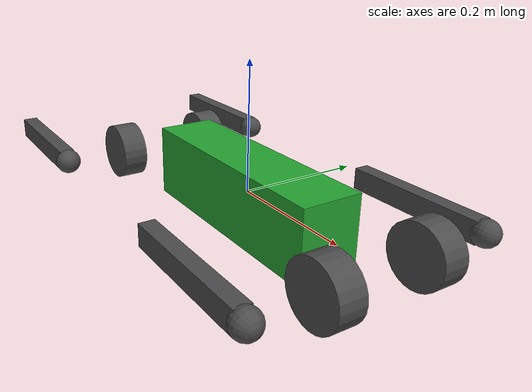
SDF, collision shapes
<sdf version='1.6'>
  <model name='jamal_description'>
    <link name='body'>
      <pose frame=''>0 0 0 0 -0 0</pose>
      <inertial>
        <pose>0 0 0 0 -0 0</pose>
        <mass>12.8195</mass>
        <inertia>
          <ixx>0.0566668</ixx>
          <ixy>-8.54732e-06</ixy>
          <ixz>3.4116e-05</ixz>
          <iyy>0.0365645</iyy>
          <iyz>-4.86965e-06</iyz>
          <izz>0.0738589</izz>
        </inertia>
      </inertial>
      <collision name='body_collision_collision'>
        <pose>0 0 0 0 -0 0</pose>
        <geometry>
          <box>
            <size>0.3762 0.0935 0.114</size>
          </box>
        </geometry>
        <surface>
          <contact>
            <ode/>
          </contact>
          <friction>
            <ode/>
          </friction>
        </surface>
      </collision>
      <collision name='body_fixed_joint_lump__imu_link_collision_1'>
        <pose frame=''>0 0 0 0 -0 0</pose>
        <geometry>
          <box>
            <size>0.001 0.001 0.001</size>
          </box>
        </geometry>
        <surface>
          <contact>
            <ode/>
          </contact>
          <friction>
            <ode>
              <mu>0.5</mu>
              <mu2>0.5</mu2>
            </ode>
          </friction>
        </surface>
      </collision>
      <visual name='body_visual'>
        <pose frame=''>0 0 0 0 -0 0</pose>
        <geometry>
          <box>
            <size>0.001 0.001 0.001</size>
          </box>
        </geometry>
        <material>
          <script>
            <name>Gazebo/Green</name>
            <uri>file://media/materials/scripts/gazebo.material</uri>
          </script>
        </material>
      </visual>
      <visual name='body_visual_visual_1'>
        <pose frame=''>0 0 0 0 -0 0</pose>
        <geometry>
          <mesh>
            <scale>1 1 1</scale>
            <uri>model:///meshes/trunk.dae</uri>
          </mesh>
        </geometry>
        <material>
          <script>
            <name>Gazebo/Green</name>
            <uri>file://media/materials/scripts/gazebo.material</uri>
          </script>
        </material>
      </visual>
      <visual name='body_fixed_joint_lump__imu_link_visual_2'>
        <pose>0 0 0 0 -0 0</pose>
        <geometry>
          <box>
            <size>0.001 0.001 0.001</size>
          </box>
        </geometry>
        <material>
          <script>
            <name>Gazebo/Red</name>
            <uri>file://media/materials/scripts/gazebo.material</uri>
          </script>
        </material>
      </visual>
      <velocity_decay/>
      <velocity_decay/>
      <velocity_decay/>
      <gravity>1</gravity>
      <sensor name='imu_sensor' type='imu'>
        <always_on>1</always_on>
        <update_rate>1000</update_rate>
        <visualize>1</visualize>
        <topic>__default_topic__</topic>
        <plugin name='imu_plugin' filename='libgazebo_ros_imu_sensor.so'>
          <topicName>trunk_imu</topicName>
          <bodyName>imu_link</bodyName>
          <updateRateHZ>1000.0</updateRateHZ>
          <gaussianNoise>0.0</gaussianNoise>
          <xyzOffset>0 0 0</xyzOffset>
          <rpyOffset>0 0 0</rpyOffset>
          <frameName>imu_link</frameName>
        </plugin>
        <pose>0 0 0 0 -0 0</pose>
      </sensor>
      <gravity>1</gravity>
    </link>
    <link name='hip2'>
      <pose relative_to='10'>0 0 0 0 -0 0</pose>
      <inertial>
        <pose>0 0 0 0 -0 0</pose>
        <mass>0.933763</mass>
        <inertia>
          <ixx>0.000832274</ixx>
          <ixy>-2.01743e-06</ixy>
          <ixz>-9.96248e-07</ixz>
          <iyy>0.00106512</iyy>
          <iyz>3.2766e-06</iyz>
          <izz>0.00080368</izz>
        </inertia>
      </inertial>
      <collision name='hip2_collision_collision'>
        <pose>0 0 0 1.5708 -0 0</pose>
        <geometry>
          <cylinder>
            <length>0.04</length>
            <radius>0.046</radius>
          </cylinder>
        </geometry>
        <surface>
          <contact>
            <ode/>
          </contact>
          <friction>
            <ode>
              <mu>0.2</mu>
              <mu2>0.2</mu2>
            </ode>
          </friction>
        </surface>
      </collision>
      <visual name='hip2_visual_visual'>
        <pose>0 0 0 3.14159 -0 0</pose>
        <geometry>
          <mesh>
            <scale>1 1 1</scale>
            <uri>model:///meshes/hip.dae</uri>
          </mesh>
        </geometry>
        <material>
          <script>
            <name>Gazebo/DarkGrey</name>
            <uri>file://media/materials/scripts/gazebo.material</uri>
          </script>
        </material>
      </visual>
      <gravity>1</gravity>
    </link>
    <joint name='10' type='revolute'>
      <pose relative_to='body'>0.2699 -0.08028 0 0 -0 0</pose>
      <parent>body</parent>
      <child>hip2</child>
      <physics>
        <provide_feedback>true</provide_feedback>
      </physics>
      <axis>
        <xyz>1 0 0</xyz>
        <limit>
          <lower>-0.436332</lower>
          <upper>0.436332</upper>
          <effort>48</effort>
          <velocity>8</velocity>
        </limit>
        <dynamics>
          <damping>0.01</damping>
          <friction>0.2</friction>
          <spring_reference>0</spring_reference>
          <spring_stiffness>0</spring_stiffness>
        </dynamics>
      </axis>
    </joint>

    <link name='upper2'>
      <pose relative_to='4'>0 0 0 0 -0 0</pose>
      <inertial>
        <pose>0 0 0 0 -0 0</pose>
        <mass>1.32134</mass>
        <inertia>
          <ixx>0.00262881</ixx>
          <ixy>-3.0753e-07</ixy>
          <ixz>-6.61219e-05</ixz>
          <iyy>0.00316092</iyy>
          <iyz>-4.01609e-05</iyz>
          <izz>0.00121962</izz>
        </inertia>
      </inertial>
      <collision name='upper2_collision_collision'>
        <pose>0 0 -0.1125 0 1.5708 0</pose>
        <geometry>
          <box>
            <size>0.225 0.0245 0.034</size>
          </box>
        </geometry>
        <surface>
          <contact>
            <ode>
              <kp>1e+06</kp>
              <kd>1</kd>
            </ode>
          </contact>
          <friction>
            <ode>
              <mu>0.2</mu>
              <mu2>0.2</mu2>
            </ode>
          </friction>
        </surface>
      </collision>
      <visual name='upper2_visual_visual'>
        <pose>0 0 0 0 -0 0</pose>
        <geometry>
          <mesh>
            <scale>1 1 1</scale>
            <uri>model:///meshes/thigh_mirror.dae</uri>
          </mesh>
        </geometry>
        <material>
          <script>
            <name>Gazebo/DarkGrey</name>
            <uri>file://media/materials/scripts/gazebo.material</uri>
          </script>
        </material>
      </visual>
      <gravity>1</gravity>
    </link>
    <joint name='4' type='revolute'>
      <pose relative_to='hip2'>0 -0.10755 0 0 1.5708 0</pose>
      <parent>hip2</parent>
      <child>upper2</child>
      <physics>
        <provide_feedback>true</provide_feedback>
      </physics>
      <axis>
        <xyz>0 -1 0</xyz>
        <limit>
          <lower>-1.5708</lower>
          <upper>1.5708</upper>
          <effort>48</effort>
          <velocity>8</velocity>
        </limit>
        <dynamics>
          <damping>0.01</damping>
          <friction>0.2</friction>
          <spring_reference>0</spring_reference>
          <spring_stiffness>0</spring_stiffness>
        </dynamics>
      </axis>
    </joint>

    <link name='lower2'>
      <pose relative_to='5'>0 0 0 0 -0 0</pose>
      <inertial>
        <pose>0 0 -0.079452 0 -0 0</pose>
        <mass>0.188793</mass>
        <inertia>
          <ixx>0.00301049</ixx>
          <ixy>-7.71824e-09</ixy>
          <ixz>7.55837e-05</ixz>
          <iyy>0.00303084</iyy>
          <iyz>4.84096e-09</iyz>
          <izz>3.03639e-05</izz>
        </inertia>
      </inertial>
      <collision name='lower2_collision_collision'>
        <pose>0 0 -0.115 0 1.5708 0</pose>
        <geometry>
          <box>
            <size>0.23 0.016 0.016</size>
          </box>
        </geometry>
        <surface>
          <contact>
            <ode/>
          </contact>
          <friction>
            <ode>
              <mu>0.2</mu>
              <mu2>0.2</mu2>
            </ode>
          </friction>
        </surface>
      </collision>
      <visual name='lower2_visual_visual'>
        <pose frame=''>0 0 0 0 -0 0</pose>
        <geometry>
          <mesh>
            <scale>1 1 1</scale>
            <uri>model:///meshes/calf.dae</uri>
          </mesh>
        </geometry>
        <material>
          <script>
            <uri>__default__</uri>
            <name>__default__</name>
          </script>
        </material>
      </visual>
      <gravity>1</gravity>
      <velocity_decay/>
      <self_collide>0</self_collide>
    </link>

    <joint name='5' type='revolute'>
      <pose relative_to='upper2'>0 0 -0.225 3.14159 -0 3.14159</pose>
      <parent>upper2</parent>
      <child>lower2</child>
      <physics>
        <provide_feedback>true</provide_feedback>
      </physics>
      <axis>
        <xyz>0 1 0</xyz>
        <limit>
          <lower>-2.67035</lower>
          <upper>2.67035</upper>
          <effort>48</effort>
          <velocity>8</velocity>
        </limit>
        <dynamics>
          <damping>0.01</damping>
          <friction>0.2</friction>
          <spring_reference>0</spring_reference>
          <spring_stiffness>0</spring_stiffness>
        </dynamics>
      </axis>
    </joint>
    <link name='toe2'>
      <pose relative_to='lower2'>0 0 -0.23 0 -0 0</pose>
      <inertial>
        <pose frame=''>0 0 0 0 -0 0</pose>
        <mass>0.06</mass>
        <inertia>
          <ixx>9.6e-06</ixx>
          <ixy>0</ixy>
          <ixz>0</ixz>
          <iyy>9.6e-06</iyy>
          <iyz>0</iyz>
          <izz>9.6e-06</izz>
        </inertia>
      </inertial>
      <collision name='toe2_collision_collision'>
        <pose frame=''>0 0 0 0 -0 0</pose>
        <geometry>
          <sphere>
            <radius>0.02</radius>
          </sphere>
        </geometry>
        <surface>
          <contact>
            <ode>
              <kp>1e+06</kp>
              <kd>1</kd>
            </ode>
          </contact>
          <friction>
            <ode>
              <mu>0.6</mu>
              <mu2>0.6</mu2>
            </ode>
          </friction>
        </surface>
      </collision>
      <visual name='toe2_visual_visual'>
        <pose frame=''>0 0 0 0 -0 0</pose>
        <geometry>
          <sphere>
            <radius>0.01</radius>
          </sphere>
        </geometry>
        <material>
          <script>
            <name>Gazebo/DarkGrey</name>
            <uri>file://media/materials/scripts/gazebo.material</uri>
          </script>
        </material>
      </visual>
      <velocity_decay/>
      <sensor name='toe2_contact' type='contact'>
        <plugin name='toe2_plugin' filename='libgazebo_ros_bumper.so'>
          <alwaysOn>1</alwaysOn>
          <updateRate>500</updateRate>
          <bumperTopicName>gazebo/toe2_contact_state</bumperTopicName>
          <frameName>world</frameName>
        </plugin>
        <contact>
          <collision>toe2_collision</collision>
          <topic>__default_topic__</topic>
        </contact>
        <update_rate>500</update_rate>
      </sensor>
      <gravity>1</gravity>
      <velocity_decay/>
      <self_collide>0</self_collide>
    </link>
    <joint name='jtoe2' type='fixed'>
      <child>toe2</child>
      <parent>lower2</parent>
      <axis>
        <dynamics>
          <spring_reference>0</spring_reference>
          <spring_stiffness>0</spring_stiffness>
        </dynamics>
        <xyz>0 0 1</xyz>
        <use_parent_model_frame>0</use_parent_model_frame>
        <limit>
          <lower>-1e+16</lower>
          <upper>1e+16</upper>
        </limit>
      </axis>
      <physics>
        <ode>
          <limit>
            <cfm>0</cfm>
            <erp>0.2</erp>
          </limit>
        </ode>
      </physics>
    </joint>

    <link name='hip3'>
      <pose relative_to='11'>0 0 0 0 -0 0</pose>
      <inertial>
        <pose>0 0 0 0 -0 0</pose>
        <mass>0.933763</mass>
        <inertia>
          <ixx>0.000832274</ixx>
          <ixy>2.01743e-06</ixy>
          <ixz>9.96248e-07</ixz>
          <iyy>0.00106512</iyy>
          <iyz>3.2766e-06</iyz>
          <izz>0.00080368</izz>
        </inertia>
      </inertial>
      <collision name='hip3_collision_collision'>
        <pose>0 0 0 1.5708 -0 0</pose>
        <geometry>
          <cylinder>
            <length>0.04</length>
            <radius>0.046</radius>
          </cylinder>
        </geometry>
        <surface>
          <contact>
            <ode/>
          </contact>
          <friction>
            <ode>
              <mu>0.2</mu>
              <mu2>0.2</mu2>
            </ode>
          </friction>
        </surface>
      </collision>
      <visual name='hip3_visual_visual'>
        <pose>0 0 0 -0 0 3.14159</pose>
        <geometry>
          <mesh>
            <scale>1 1 1</scale>
            <uri>model:///meshes/hip.dae</uri>
          </mesh>
        </geometry>
        <material>
          <script>
            <name>Gazebo/DarkGrey</name>
            <uri>file://media/materials/scripts/gazebo.material</uri>
          </script>
        </material>
      </visual>
      <gravity>1</gravity>
    </link>
    <joint name='11' type='revolute'>
      <pose relative_to='body'>-0.2699 -0.08028 0 0 -0 0</pose>
      <parent>body</parent>
      <child>hip3</child>
      <physics>
        <provide_feedback>true</provide_feedback>
      </physics>
      <axis>
        <xyz>1 0 0</xyz>
        <limit>
          <lower>-0.436332</lower>
          <upper>0.436332</upper>
          <effort>48</effort>
          <velocity>8</velocity>
        </limit>
        <dynamics>
          <damping>0.01</damping>
          <friction>0.2</friction>
          <spring_reference>0</spring_reference>
          <spring_stiffness>0</spring_stiffness>
        </dynamics>
      </axis>
    </joint>

    <link name='upper3'>
      <pose relative_to='6'>0 0 0 0 -0 0</pose>
      <inertial>
        <pose>0 0 0 0 -0 0</pose>
        <mass>1.32134</mass>
        <inertia>
          <ixx>0.00262881</ixx>
          <ixy>-3.0753e-07</ixy>
          <ixz>-6.61219e-05</ixz>
          <iyy>0.00316092</iyy>
          <iyz>-4.01609e-05</iyz>
          <izz>0.00121962</izz>
        </inertia>
      </inertial>
      <collision name='upper3_collision_collision'>
        <pose>0 0 -0.1125 0 1.5708 0</pose>
        <geometry>
          <box>
            <size>0.225 0.0245 0.034</size>
          </box>
        </geometry>
        <surface>
          <contact>
            <ode>
              <kp>1e+06</kp>
              <kd>1</kd>
            </ode>
          </contact>
          <friction>
            <ode>
              <mu>0.2</mu>
              <mu2>0.2</mu2>
            </ode>
          </friction>
        </surface>
      </collision>
      <visual name='upper3_visual_visual'>
        <pose>0 0 0 0 -0 0</pose>
        <geometry>
          <mesh>
            <scale>1 1 1</scale>
            <uri>model:///meshes/thigh_mirror.dae</uri>
          </mesh>
        </geometry>
        <material>
          <script>
            <name>Gazebo/DarkGrey</name>
            <uri>file://media/materials/scripts/gazebo.material</uri>
          </script>
        </material>
      </visual>
      <gravity>1</gravity>
    </link>
    <joint name='6' type='revolute'>
      <pose relative_to='hip3'>0 -0.10755 0 0 1.5708 0</pose>
      <parent>hip3</parent>
      <child>upper3</child>
      <physics>
        <provide_feedback>true</provide_feedback>
      </physics>
      <axis>
        <xyz>0 -1 0</xyz>
        <limit>
          <lower>-1.5708</lower>
          <upper>1.5708</upper>
          <effort>48</effort>
          <velocity>8</velocity>
        </limit>
        <dynamics>
          <damping>0.01</damping>
          <friction>0.2</friction>
          <spring_reference>0</spring_reference>
          <spring_stiffness>0</spring_stiffness>
        </dynamics>
      </axis>
    </joint>

    <link name='lower3'>
      <pose relative_to='7'>0 0 0 0 -0 0</pose>
      <inertial>
        <pose>0 0 -0.079452 0 -0 0</pose>
        <mass>0.188793</mass>
        <inertia>
          <ixx>0.00301049</ixx>
          <ixy>-7.71824e-09</ixy>
          <ixz>7.55837e-05</ixz>
          <iyy>0.00303084</iyy>
          <iyz>4.84096e-09</iyz>
          <izz>3.03639e-05</izz>
        </inertia>
      </inertial>
      <collision name='lower3_collision_collision'>
        <pose>0 0 -0.115 0 1.5708 0</pose>
        <geometry>
          <box>
            <size>0.23 0.016 0.016</size>
          </box>
        </geometry>
        <surface>
          <contact>
            <ode/>
          </contact>
          <friction>
            <ode>
              <mu>0.2</mu>
              <mu2>0.2</mu2>
            </ode>
          </friction>
        </surface>
      </collision>
      <visual name='lower3_visual_visual'>
        <pose frame=''>0 0 0 0 -0 0</pose>
        <geometry>
          <mesh>
            <scale>1 1 1</scale>
            <uri>model:///meshes/calf.dae</uri>
          </mesh>
        </geometry>
        <material>
          <script>
            <uri>__default__</uri>
            <name>__default__</name>
          </script>
        </material>
      </visual>
      <gravity>1</gravity>
      <velocity_decay/>
      <self_collide>0</self_collide>
    </link>
    <joint name='7' type='revolute'>
      <pose relative_to='upper3'>0 0 -0.225 3.14159 -0 3.14159</pose>
      <parent>upper3</parent>
      <child>lower3</child>
      <physics>
        <provide_feedback>true</provide_feedback>
      </physics>
      <axis>
        <xyz>0 1 0</xyz>
        <limit>
          <lower>-2.67035</lower>
          <upper>2.67035</upper>
          <effort>48</effort>
          <velocity>8</velocity>
        </limit>
        <dynamics>
          <damping>0.01</damping>
          <friction>0.2</friction>
          <spring_reference>0</spring_reference>
          <spring_stiffness>0</spring_stiffness>
        </dynamics>
      </axis>
    </joint>

    <link name='toe3'>
      <pose relative_to='lower3'>0 0 -0.23 0 -0 0</pose>
      <inertial>
        <pose frame=''>0 0 0 0 -0 0</pose>
        <mass>0.06</mass>
        <inertia>
          <ixx>9.6e-06</ixx>
          <ixy>0</ixy>
          <ixz>0</ixz>
          <iyy>9.6e-06</iyy>
          <iyz>0</iyz>
          <izz>9.6e-06</izz>
        </inertia>
      </inertial>
      <collision name='toe3_collision_collision'>
        <pose frame=''>0 0 0 0 -0 0</pose>
        <geometry>
          <sphere>
            <radius>0.02</radius>
          </sphere>
        </geometry>
        <surface>
          <contact>
            <ode>
              <kp>1e+06</kp>
              <kd>1</kd>
            </ode>
          </contact>
          <friction>
            <ode>
              <mu>0.6</mu>
              <mu2>0.6</mu2>
            </ode>
          </friction>
        </surface>
      </collision>
      <visual name='toe3_visual_visual'>
        <pose frame=''>0 0 0 0 -0 0</pose>
        <geometry>
          <sphere>
            <radius>0.01</radius>
          </sphere>
        </geometry>
        <material>
          <script>
            <name>Gazebo/DarkGrey</name>
            <uri>file://media/materials/scripts/gazebo.material</uri>
          </script>
        </material>
      </visual>
      <velocity_decay/>
      <sensor name='toe3_contact' type='contact'>
        <plugin name='toe3_plugin' filename='libgazebo_ros_bumper.so'>
          <alwaysOn>1</alwaysOn>
          <updateRate>500</updateRate>
          <bumperTopicName>gazebo/toe3_contact_state</bumperTopicName>
          <frameName>world</frameName>
        </plugin>
        <contact>
          <collision>toe3_collision</collision>
          <topic>__default_topic__</topic>
        </contact>
        <update_rate>500</update_rate>
      </sensor>
      <gravity>1</gravity>
      <velocity_decay/>
      <self_collide>0</self_collide>
    </link>
    <joint name='jtoe3' type='fixed'>
      <child>toe3</child>
      <parent>lower3</parent>
      <axis>
        <dynamics>
          <spring_reference>0</spring_reference>
          <spring_stiffness>0</spring_stiffness>
        </dynamics>
        <xyz>0 0 1</xyz>
        <use_parent_model_frame>0</use_parent_model_frame>
        <limit>
          <lower>-1e+16</lower>
          <upper>1e+16</upper>
        </limit>
      </axis>
      <physics>
        <ode>
          <limit>
            <cfm>0</cfm>
            <erp>0.2</erp>
          </limit>
        </ode>
      </physics>
    </joint>

    <link name='hip0'>
      <pose relative_to='8'>0 0 0 0 -0 0</pose>
      <inertial>
        <pose>0 0 0 0 -0 0</pose>
        <mass>0.933763</mass>
        <inertia>
          <ixx>0.000832274</ixx>
          <ixy>2.01743e-06</ixy>
          <ixz>-9.96248e-07</ixz>
          <iyy>0.00106512</iyy>
          <iyz>-3.2766e-06</iyz>
          <izz>0.00080368</izz>
        </inertia>
      </inertial>
      <collision name='hip0_collision_collision'>
        <pose>0 0 0 1.5708 -0 0</pose>
        <geometry>
          <cylinder>
            <length>0.04</length>
            <radius>0.046</radius>
          </cylinder>
        </geometry>
        <surface>
          <contact>
            <ode/>
          </contact>
          <friction>
            <ode>
              <mu>0.2</mu>
              <mu2>0.2</mu2>
            </ode>
          </friction>
        </surface>
      </collision>
      <visual name='hip0_visual_visual'>
        <pose>0 0 0 0 -0 0</pose>
        <geometry>
          <mesh>
            <scale>1 1 1</scale>
            <uri>model:///meshes/hip.dae</uri>
          </mesh>
        </geometry>
        <material>
          <script>
            <name>Gazebo/DarkGrey</name>
            <uri>file://media/materials/scripts/gazebo.material</uri>
          </script>
        </material>
      </visual>
      <gravity>1</gravity>
    </link>
    <joint name='8' type='revolute'>
      <pose relative_to='body'>0.2699 0.08028 0 0 -0 0</pose>
      <parent>body</parent>
      <child>hip0</child>
      <physics>
        <provide_feedback>true</provide_feedback>
      </physics>
      <axis>
        <xyz>1 0 0</xyz>
        <limit>
          <lower>-0.436332</lower>
          <upper>0.436332</upper>
          <effort>48</effort>
          <velocity>8</velocity>
        </limit>
        <dynamics>
          <damping>0.01</damping>
          <friction>0.2</friction>
          <spring_reference>0</spring_reference>
          <spring_stiffness>0</spring_stiffness>
        </dynamics>
      </axis>
    </joint>

    <link name='upper0'>
      <pose relative_to='0'>0 0 0 0 -0 0</pose>
      <inertial>
        <pose>0 0 0 0 -0 0</pose>
        <mass>1.32134</mass>
        <inertia>
          <ixx>0.00262881</ixx>
          <ixy>3.0753e-07</ixy>
          <ixz>-6.61219e-05</ixz>
          <iyy>0.00316092</iyy>
          <iyz>4.01609e-05</iyz>
          <izz>0.00121962</izz>
        </inertia>
      </inertial>
      <collision name='upper0_collision_collision'>
        <pose>0 0 -0.1125 0 1.5708 0</pose>
        <geometry>
          <box>
            <size>0.225 0.0245 0.034</size>
          </box>
        </geometry>
        <surface>
          <contact>
            <ode>
              <kp>1e+06</kp>
              <kd>1</kd>
            </ode>
          </contact>
          <friction>
            <ode>
              <mu>0.2</mu>
              <mu2>0.2</mu2>
            </ode>
          </friction>
        </surface>
      </collision>
      <visual name='upper0_visual_visual'>
        <pose>0 0 0 0 -0 0</pose>
        <geometry>
          <mesh>
            <scale>1 1 1</scale>
            <uri>model:///meshes/thigh.dae</uri>
          </mesh>
        </geometry>
        <material>
          <script>
            <name>Gazebo/DarkGrey</name>
            <uri>file://media/materials/scripts/gazebo.material</uri>
          </script>
        </material>
      </visual>
      <gravity>1</gravity>

    </link>
    <joint name='0' type='revolute'>
      <pose relative_to='hip0'>0 0.10755 0 0 1.5708 0</pose>
      <parent>hip0</parent>
      <child>upper0</child>
      <physics>
        <provide_feedback>true</provide_feedback>
      </physics>
      <axis>
        <xyz>0 -1 0</xyz>
        <limit>
          <lower>-1.5708</lower>
          <upper>1.5708</upper>
          <effort>48</effort>
          <velocity>8</velocity>
        </limit>
        <dynamics>
          <damping>0.01</damping>
          <friction>0.2</friction>
          <spring_reference>0</spring_reference>
          <spring_stiffness>0</spring_stiffness>
        </dynamics>
      </axis>
    </joint>

    <link name='lower0'>
      <pose relative_to='1'>0 0 0 0 -0 0</pose>
      <inertial>
        <pose>0 0 -0.079452 0 -0 0</pose>
        <mass>0.188793</mass>
        <inertia>
          <ixx>0.00301049</ixx>
          <ixy>-7.71824e-09</ixy>
          <ixz>7.55837e-05</ixz>
          <iyy>0.00303084</iyy>
          <iyz>4.84096e-09</iyz>
          <izz>3.03639e-05</izz>
        </inertia>
      </inertial>
      <collision name='lower0_collision_collision'>
        <pose>0 0 -0.115 0 1.5708 0</pose>
        <geometry>
          <box>
            <size>0.23 0.016 0.016</size>
          </box>
        </geometry>
        <surface>
          <contact>
            <ode/>
          </contact>
          <friction>
            <ode>
              <mu>0.2</mu>
              <mu2>0.2</mu2>
            </ode>
          </friction>
        </surface>
      </collision>
      <visual name='lower0_visual_visual'>
        <pose frame=''>0 0 0 0 -0 0</pose>
        <geometry>
          <mesh>
            <scale>1 1 1</scale>
            <uri>model:///meshes/calf.dae</uri>
          </mesh>
        </geometry>
        <material>
          <script>
            <uri>__default__</uri>
            <name>__default__</name>
          </script>
        </material>
      </visual>
      <gravity>1</gravity>
      <velocity_decay/>
      <self_collide>0</self_collide>
    </link>
    <joint name='1' type='revolute'>
      <pose relative_to='upper0'>0 0 -0.225 3.14159 -0 3.14159</pose>
      <parent>upper0</parent>
      <child>lower0</child>
      <physics>
        <provide_feedback>true</provide_feedback>
      </physics>
      <axis>
        <xyz>0 1 0</xyz>
        <limit>
          <lower>-2.67035</lower>
          <upper>2.67035</upper>
          <effort>48</effort>
          <velocity>8</velocity>
        </limit>
        <dynamics>
          <damping>0.01</damping>
          <friction>0.2</friction>
          <spring_reference>0</spring_reference>
          <spring_stiffness>0</spring_stiffness>
        </dynamics>
      </axis>
    </joint>

    <link name='toe0'>
      <pose relative_to='lower0'>0 0 -0.23 0 -0 0</pose>
      <inertial>
        <pose frame=''>0 0 0 0 -0 0</pose>
        <mass>0.06</mass>
        <inertia>
          <ixx>9.6e-06</ixx>
          <ixy>0</ixy>
          <ixz>0</ixz>
          <iyy>9.6e-06</iyy>
          <iyz>0</iyz>
          <izz>9.6e-06</izz>
        </inertia>
      </inertial>
      <collision name='toe0_collision_collision'>
        <pose frame=''>0 0 0 0 -0 0</pose>
        <geometry>
          <sphere>
            <radius>0.02</radius>
          </sphere>
        </geometry>
        <surface>
          <contact>
            <ode>
              <kp>1e+06</kp>
              <kd>1</kd>
            </ode>
          </contact>
          <friction>
            <ode>
              <mu>0.6</mu>
              <mu2>0.6</mu2>
            </ode>
          </friction>
        </surface>
      </collision>
      <visual name='toe0_visual_visual'>
        <pose frame=''>0 0 0 0 -0 0</pose>
        <geometry>
          <sphere>
            <radius>0.01</radius>
          </sphere>
        </geometry>
        <material>
          <script>
            <name>Gazebo/DarkGrey</name>
            <uri>file://media/materials/scripts/gazebo.material</uri>
          </script>
        </material>
      </visual>
      <velocity_decay/>
      <sensor name='toe0_contact' type='contact'>
        <plugin name='toe0_plugin' filename='libgazebo_ros_bumper.so'>
          <alwaysOn>1</alwaysOn>
          <updateRate>500</updateRate>
          <bumperTopicName>gazebo/toe0_contact_state</bumperTopicName>
          <frameName>world</frameName>
        </plugin>
        <contact>
          <collision>toe0_collision</collision>
          <topic>__default_topic__</topic>
        </contact>
        <update_rate>500</update_rate>
      </sensor>
      <gravity>1</gravity>
      <velocity_decay/>
      <self_collide>0</self_collide>
    </link>
    <joint name='jtoe0' type='fixed'>
      <child>toe0</child>
      <parent>lower0</parent>
      <axis>
        <dynamics>
          <spring_reference>0</spring_reference>
          <spring_stiffness>0</spring_stiffness>
        </dynamics>
        <xyz>0 0 1</xyz>
        <use_parent_model_frame>0</use_parent_model_frame>
        <limit>
          <lower>-1e+16</lower>
          <upper>1e+16</upper>
        </limit>
      </axis>
      <physics>
        <ode>
          <limit>
            <cfm>0</cfm>
            <erp>0.2</erp>
          </limit>
        </ode>
      </physics>
    </joint>

    <link name='hip1'>
      <pose relative_to='9'>0 0 0 0 -0 0</pose>
      <inertial>
        <pose>0 0 0 0 -0 0</pose>
        <mass>0.933763</mass>
        <inertia>
          <ixx>0.000832274</ixx>
          <ixy>-2.01743e-06</ixy>
          <ixz>9.96248e-07</ixz>
          <iyy>0.00106512</iyy>
          <iyz>-3.2766e-06</iyz>
          <izz>0.00080368</izz>
        </inertia>
      </inertial>
      <collision name='hip1_collision_collision'>
        <pose>0 0 0 1.5708 -0 0</pose>
        <geometry>
          <cylinder>
            <length>0.04</length>
            <radius>0.046</radius>
          </cylinder>
        </geometry>
        <surface>
          <contact>
            <ode/>
          </contact>
          <friction>
            <ode>
              <mu>0.2</mu>
              <mu2>0.2</mu2>
            </ode>
          </friction>
        </surface>
      </collision>
      <visual name='hip1_visual_visual'>
        <pose>0 0 0 3.14159 0 3.14159</pose>
        <geometry>
          <mesh>
            <scale>1 1 1</scale>
            <uri>model:///meshes/hip.dae</uri>
          </mesh>
        </geometry>
        <material>
          <script>
            <name>Gazebo/DarkGrey</name>
            <uri>file://media/materials/scripts/gazebo.material</uri>
          </script>
        </material>
      </visual>
      <gravity>1</gravity>
    </link>
    <joint name='9' type='revolute'>
      <pose relative_to='body'>-0.2699 0.08028 0 0 -0 0</pose>
      <parent>body</parent>
      <child>hip1</child>
      <physics>
        <provide_feedback>true</provide_feedback>
      </physics>
      <axis>
        <xyz>1 0 0</xyz>
        <limit>
          <lower>-0.436332</lower>
          <upper>0.436332</upper>
          <effort>48</effort>
          <velocity>8</velocity>
        </limit>
        <dynamics>
          <damping>0.01</damping>
          <friction>0.2</friction>
          <spring_reference>0</spring_reference>
          <spring_stiffness>0</spring_stiffness>
        </dynamics>
      </axis>
    </joint>

    <link name='upper1'>
      <pose relative_to='2'>0 0 0 0 -0 0</pose>
      <inertial>
        <pose>0 0 0 0 -0 0</pose>
        <mass>1.32134</mass>
        <inertia>
          <ixx>0.00262881</ixx>
          <ixy>3.0753e-07</ixy>
          <ixz>-6.61219e-05</ixz>
          <iyy>0.00316092</iyy>
          <iyz>4.01609e-05</iyz>
          <izz>0.00121962</izz>
        </inertia>
      </inertial>
      <collision name='upper1_collision_collision'>
        <pose>0 0 -0.1125 0 1.5708 0</pose>
        <geometry>
          <box>
            <size>0.225 0.0245 0.034</size>
          </box>
        </geometry>
        <surface>
          <contact>
            <ode>
              <kp>1e+06</kp>
              <kd>1</kd>
            </ode>
          </contact>
          <friction>
            <ode>
              <mu>0.2</mu>
              <mu2>0.2</mu2>
            </ode>
          </friction>
        </surface>
      </collision>
      <visual name='upper1_visual_visual'>
        <pose>0 0 0 0 -0 0</pose>
        <geometry>
          <mesh>
            <scale>1 1 1</scale>
            <uri>model:///meshes/thigh.dae</uri>
          </mesh>
        </geometry>
        <material>
          <script>
            <name>Gazebo/DarkGrey</name>
            <uri>file://media/materials/scripts/gazebo.material</uri>
          </script>
        </material>
      </visual>
      <gravity>1</gravity>

    </link>
    <joint name='2' type='revolute'>
      <pose relative_to='hip1'>0 0.10755 0 0 1.5708 0</pose>
      <parent>hip1</parent>
      <child>upper1</child>
      <physics>
        <provide_feedback>true</provide_feedback>
      </physics>
      <axis>
        <xyz>0 -1 0</xyz>
        <limit>
          <lower>-1.5708</lower>
          <upper>1.5708</upper>
          <effort>48</effort>
          <velocity>8</velocity>
        </limit>
        <dynamics>
          <damping>0.01</damping>
          <friction>0.2</friction>
          <spring_reference>0</spring_reference>
          <spring_stiffness>0</spring_stiffness>
        </dynamics>
      </axis>
    </joint>

    <link name='lower1'>
      <pose relative_to='3'>0 0 0 0 -0 0</pose>
      <inertial>
        <pose>0 0 -0.079452 0 -0 0</pose>
        <mass>0.188793</mass>
        <inertia>
          <ixx>0.00301049</ixx>
          <ixy>-7.71824e-09</ixy>
          <ixz>7.55837e-05</ixz>
          <iyy>0.00303084</iyy>
          <iyz>4.84096e-09</iyz>
          <izz>3.03639e-05</izz>
        </inertia>
      </inertial>
      <collision name='lower1_collision_collision'>
        <pose>0 0 -0.115 0 1.5708 0</pose>
        <geometry>
          <box>
            <size>0.23 0.016 0.016</size>
          </box>
        </geometry>
        <surface>
          <contact>
            <ode/>
          </contact>
          <friction>
            <ode>
              <mu>0.2</mu>
              <mu2>0.2</mu2>
            </ode>
          </friction>
        </surface>
      </collision>
      <visual name='lower1_visual_visual'>
        <pose frame=''>0 0 0 0 -0 0</pose>
        <geometry>
          <mesh>
            <scale>1 1 1</scale>
            <uri>model:///meshes/calf.dae</uri>
          </mesh>
        </geometry>
        <material>
          <script>
            <uri>__default__</uri>
            <name>__default__</name>
          </script>
        </material>
      </visual>
      <gravity>1</gravity>
      <velocity_decay/>
      <self_collide>0</self_collide>
    </link>
    <joint name='3' type='revolute'>
      <pose relative_to='upper1'>0 0 -0.225 3.14159 -0 3.14159</pose>
      <parent>upper1</parent>
      <child>lower1</child>
      <physics>
        <provide_feedback>true</provide_feedback>
      </physics>
      <axis>
        <xyz>0 1 0</xyz>
        <limit>
          <lower>-2.67035</lower>
          <upper>2.67035</upper>
          <effort>48</effort>
          <velocity>8</velocity>
        </limit>
        <dynamics>
          <damping>0.01</damping>
          <friction>0.2</friction>
          <spring_reference>0</spring_reference>
          <spring_stiffness>0</spring_stiffness>
        </dynamics>
      </axis>
    </joint>

    <link name='toe1'>
      <pose relative_to='lower1'>0 0 -0.23 0 -0 0</pose>
      <inertial>
        <pose frame=''>0 0 0 0 -0 0</pose>
        <mass>0.06</mass>
        <inertia>
          <ixx>9.6e-06</ixx>
          <ixy>0</ixy>
          <ixz>0</ixz>
          <iyy>9.6e-06</iyy>
          <iyz>0</iyz>
          <izz>9.6e-06</izz>
        </inertia>
      </inertial>
      <collision name='toe1_collision_collision'>
        <pose frame=''>0 0 0 0 -0 0</pose>
        <geometry>
          <sphere>
            <radius>0.02</radius>
          </sphere>
        </geometry>
        <surface>
          <contact>
            <ode>
              <kp>1e+06</kp>
              <kd>1</kd>
            </ode>
          </contact>
          <friction>
            <ode>
              <mu>0.6</mu>
              <mu2>0.6</mu2>
            </ode>
          </friction>
        </surface>
      </collision>
      <visual name='toe1_visual_visual'>
        <pose frame=''>0 0 0 0 -0 0</pose>
        <geometry>
          <sphere>
            <radius>0.01</radius>
          </sphere>
        </geometry>
        <material>
          <script>
            <name>Gazebo/DarkGrey</name>
            <uri>file://media/materials/scripts/gazebo.material</uri>
          </script>
        </material>
      </visual>
      <velocity_decay/>
      <sensor name='toe1_contact' type='contact'>
        <plugin name='toe1_plugin' filename='libgazebo_ros_bumper.so'>
          <alwaysOn>1</alwaysOn>
          <updateRate>500</updateRate>
          <bumperTopicName>gazebo/toe1_contact_state</bumperTopicName>
          <frameName>world</frameName>
        </plugin>
        <contact>
          <collision>toe1_collision</collision>
          <topic>__default_topic__</topic>
        </contact>
        <update_rate>500</update_rate>
      </sensor>
      <gravity>1</gravity>
      <velocity_decay/>
      <self_collide>0</self_collide>
    </link>
    <joint name='jtoe1' type='fixed'>
      <child>toe1</child>
      <parent>lower1</parent>
      <axis>
        <dynamics>
          <spring_reference>0</spring_reference>
          <spring_stiffness>0</spring_stiffness>
        </dynamics>
        <xyz>0 0 1</xyz>
        <use_parent_model_frame>0</use_parent_model_frame>
        <limit>
          <lower>-1e+16</lower>
          <upper>1e+16</upper>
        </limit>
      </axis>
      <physics>
        <ode>
          <limit>
            <cfm>0</cfm>
            <erp>0.2</erp>
          </limit>
        </ode>
      </physics>
    </joint>

  <!-- Publish imu sensor readings -->

    <plugin name='gazebo_ros_control' filename='libgazebo_ros_control.so'>
      <robotSimType>gazebo_ros_control/DefaultRobotHWSim</robotSimType>
    </plugin>
    <plugin name='ground_truth_estimator' filename='libground_truth_estimator.so'>
      <updateRateHZ>500.0</updateRateHZ>
    </plugin>
    <static>0</static>
    <plugin name='gazebo_ros_force' filename='libgazebo_ros_force.so'>
      <topicName>/apply_force/trunk</topicName>
      <bodyName>body</bodyName>
      <xyzOffset>0 0 0</xyzOffset>
      <rpyOffset>0 -0 0</rpyOffset>
    </plugin>

  </model>
</sdf>
